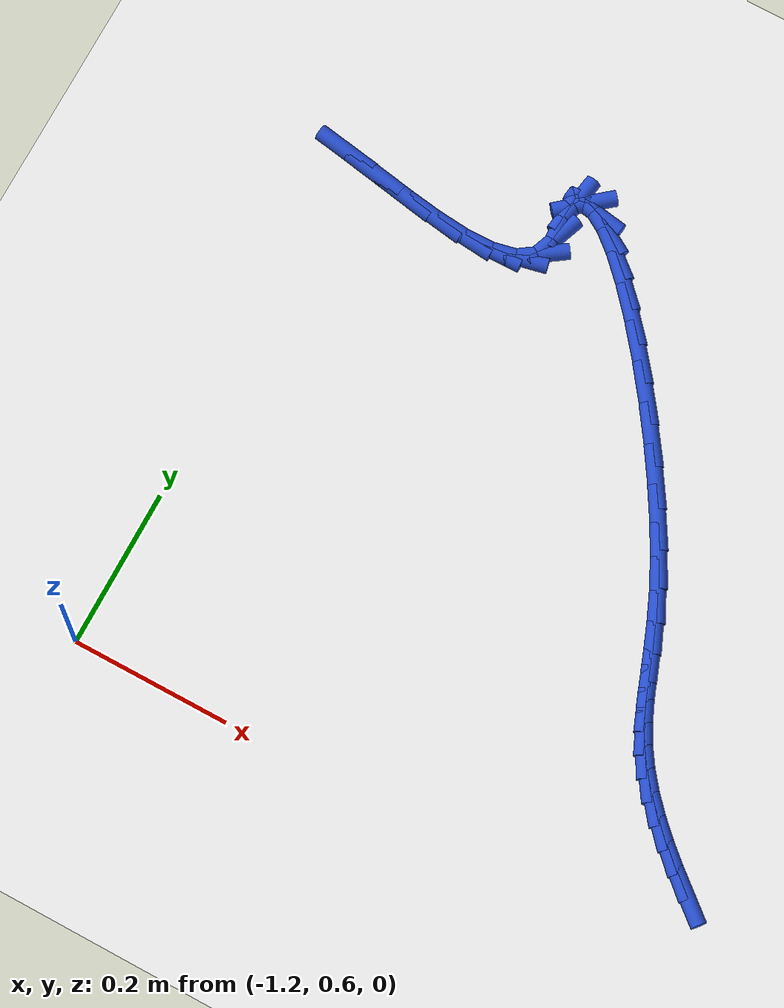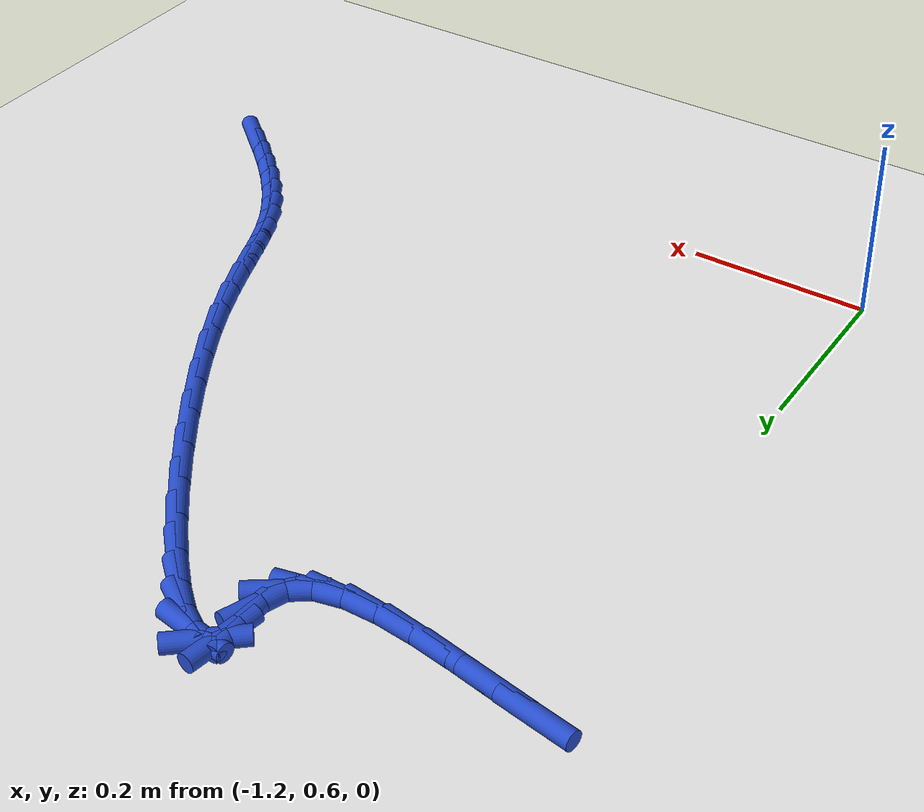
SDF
<sdf version="1.6">
 <world name="default">
  <model name="ground_plane">
   <static>1</static>
   <link name="link">
    <collision name="collision">
     <geometry><plane><normal>0 0 1</normal><size>100 100</size></plane></geometry>
     <surface><friction><ode><mu>100</mu><mu2>50</mu2></ode></friction></surface>
    </collision>
    <visual name="visual">
     <cast_shadows>0</cast_shadows>
     <geometry><plane><normal>0 0 1</normal><size>100 100</size></plane></geometry>
     <material>
      <script><uri>file://media/materials/scripts/gazebo.material</uri><name>Gazebo/WhiteGlow</name></script>
     </material>
    </visual>
   </link>
  </model>
  <model name="line">
   <link name="link_26">
    <pose>-0.4387997089156994 0.6781560836376413 0.01 0 1.57 -0.6959763503585942</pose>
    <collision name="collision">
     <geometry><cylinder><radius>0.01</radius><length>0.08</length></cylinder></geometry>
    </collision>
    <visual name="visual">
     <material>
      <script><name>Gazebo/Blue</name><uri>file://media/materials/scripts/gazebo.material</uri></script>
     </material>
     <geometry><cylinder><radius>0.01</radius><length>0.08</length></cylinder></geometry>
    </visual>
   </link>
   <link name="link_27">
    <pose>-0.4633100074963067 0.6986328044642993 0.01 0 1.57 -0.7311541261599552</pose>
    <collision name="collision">
     <geometry><cylinder><radius>0.01</radius><length>0.08</length></cylinder></geometry>
    </collision>
    <visual name="visual">
     <material>
      <script><name>Gazebo/Blue</name><uri>file://media/materials/scripts/gazebo.material</uri></script>
     </material>
     <geometry><cylinder><radius>0.01</radius><length>0.08</length></cylinder></geometry>
    </visual>
   </link>
   <link name="link_28">
    <pose>-0.48647117672768303 0.7194083296940923 0.01 0 1.57 -0.7767029563622707</pose>
    <collision name="collision">
     <geometry><cylinder><radius>0.01</radius><length>0.08</length></cylinder></geometry>
    </collision>
    <visual name="visual">
     <material>
      <script><name>Gazebo/Blue</name><uri>file://media/materials/scripts/gazebo.material</uri></script>
     </material>
     <geometry><cylinder><radius>0.01</radius><length>0.08</length></cylinder></geometry>
    </visual>
   </link>
   <link name="link_29">
    <pose>-0.5080254479037991 0.7405909850801176 0.01 0 1.57 -0.8338891792913433</pose>
    <collision name="collision">
     <geometry><cylinder><radius>0.01</radius><length>0.08</length></cylinder></geometry>
    </collision>
    <visual name="visual">
     <material>
      <script><name>Gazebo/Blue</name><uri>file://media/materials/scripts/gazebo.material</uri></script>
     </material>
     <geometry><cylinder><radius>0.01</radius><length>0.08</length></cylinder></geometry>
    </visual>
   </link>
   <link name="link_30">
    <pose>-0.5277150523186256 0.762289096375472 0.01 0 1.57 -0.9040370818781435</pose>
    <collision name="collision">
     <geometry><cylinder><radius>0.01</radius><length>0.08</length></cylinder></geometry>
    </collision>
    <visual name="visual">
     <material>
      <script><name>Gazebo/Blue</name><uri>file://media/materials/scripts/gazebo.material</uri></script>
     </material>
     <geometry><cylinder><radius>0.01</radius><length>0.08</length></cylinder></geometry>
    </visual>
   </link>
   <link name="link_31">
    <pose>-0.5452822212661331 0.784610989333253 0.01 0 1.57 -0.9882902400405796</pose>
    <collision name="collision">
     <geometry><cylinder><radius>0.01</radius><length>0.08</length></cylinder></geometry>
    </collision>
    <visual name="visual">
     <material>
      <script><name>Gazebo/Blue</name><uri>file://media/materials/scripts/gazebo.material</uri></script>
     </material>
     <geometry><cylinder><radius>0.01</radius><length>0.08</length></cylinder></geometry>
    </visual>
   </link>
   <link name="link_32">
    <pose>-0.5604691860402927 0.8076649897065584 0.01 0 1.57 -1.0823117957941057</pose>
    <collision name="collision">
     <geometry><cylinder><radius>0.01</radius><length>0.08</length></cylinder></geometry>
    </collision>
    <visual name="visual">
     <material>
      <script><name>Gazebo/Blue</name><uri>file://media/materials/scripts/gazebo.material</uri></script>
     </material>
     <geometry><cylinder><radius>0.01</radius><length>0.08</length></cylinder></geometry>
    </visual>
   </link>
   <link name="link_33">
    <pose>-0.5731873946283736 0.8315964486987707 0.01 0 1.57 -1.1576529503989859</pose>
    <collision name="collision">
     <geometry><cylinder><radius>0.01</radius><length>0.08</length></cylinder></geometry>
    </collision>
    <visual name="visual">
     <material>
      <script><name>Gazebo/Blue</name><uri>file://media/materials/scripts/gazebo.material</uri></script>
     </material>
     <geometry><cylinder><radius>0.01</radius><length>0.08</length></cylinder></geometry>
    </visual>
   </link>
   <link name="link_34">
    <pose>-0.5842092679235866 0.8567391026477709 0.01 0 1.57 -1.200900658465214</pose>
    <collision name="collision">
     <geometry><cylinder><radius>0.01</radius><length>0.08</length></cylinder></geometry>
    </collision>
    <visual name="visual">
     <material>
      <script><name>Gazebo/Blue</name><uri>file://media/materials/scripts/gazebo.material</uri></script>
     </material>
     <geometry><cylinder><radius>0.01</radius><length>0.08</length></cylinder></geometry>
    </visual>
   </link>
   <link name="link_35">
    <pose>-0.5945803694636427 0.8834864528543862 0.01 0 1.57 -1.212440061428917</pose>
    <collision name="collision">
     <geometry><cylinder><radius>0.01</radius><length>0.08</length></cylinder></geometry>
    </collision>
    <visual name="visual">
     <material>
      <script><name>Gazebo/Blue</name><uri>file://media/materials/scripts/gazebo.material</uri></script>
     </material>
     <geometry><cylinder><radius>0.01</radius><length>0.08</length></cylinder></geometry>
    </visual>
   </link>
   <link name="link_36">
    <pose>-0.6053463736047532 0.91223202486708 0.01 0 1.57 -1.1971845372921317</pose>
    <collision name="collision">
     <geometry><cylinder><radius>0.01</radius><length>0.08</length></cylinder></geometry>
    </collision>
    <visual name="visual">
     <material>
      <script><name>Gazebo/Blue</name><uri>file://media/materials/scripts/gazebo.material</uri></script>
     </material>
     <geometry><cylinder><radius>0.01</radius><length>0.08</length></cylinder></geometry>
    </visual>
   </link>
   <link name="link_37">
    <pose>-0.6175529547031305 0.9433693442343164 0.01 0 1.57 -1.1620611873588562</pose>
    <collision name="collision">
     <geometry><cylinder><radius>0.01</radius><length>0.08</length></cylinder></geometry>
    </collision>
    <visual name="visual">
     <material>
      <script><name>Gazebo/Blue</name><uri>file://media/materials/scripts/gazebo.material</uri></script>
     </material>
     <geometry><cylinder><radius>0.01</radius><length>0.08</length></cylinder></geometry>
    </visual>
   </link>
   <link name="link_38">
    <pose>-0.6322457871149865 0.9772919365045591 0.01 0 1.57 -1.1142273092928259</pose>
    <collision name="collision">
     <geometry><cylinder><radius>0.01</radius><length>0.08</length></cylinder></geometry>
    </collision>
    <visual name="visual">
     <material>
      <script><name>Gazebo/Blue</name><uri>file://media/materials/scripts/gazebo.material</uri></script>
     </material>
     <geometry><cylinder><radius>0.01</radius><length>0.08</length></cylinder></geometry>
    </visual>
   </link>
   <link name="link_39">
    <pose>-0.6504684769099253 1.0143915439300093 0.01 0 1.57 -1.0650984541148942</pose>
    <collision name="collision">
     <geometry><cylinder><radius>0.01</radius><length>0.08</length></cylinder></geometry>
    </collision>
    <visual name="visual">
     <material>
      <script><name>Gazebo/Blue</name><uri>file://media/materials/scripts/gazebo.material</uri></script>
     </material>
     <geometry><cylinder><radius>0.01</radius><length>0.08</length></cylinder></geometry>
    </visual>
   </link>
   <link name="link_40">
    <pose>-0.6727343675329157 1.0546027113158039 0.01 0 1.57 -1.0256233409169349</pose>
    <collision name="collision">
     <geometry><cylinder><radius>0.01</radius><length>0.08</length></cylinder></geometry>
    </collision>
    <visual name="visual">
     <material>
      <script><name>Gazebo/Blue</name><uri>file://media/materials/scripts/gazebo.material</uri></script>
     </material>
     <geometry><cylinder><radius>0.01</radius><length>0.08</length></cylinder></geometry>
    </visual>
   </link>
   <link name="link_41">
    <pose>-0.698325107132864 1.0967980041406897 0.01 0 1.57 -0.9921833954823563</pose>
    <collision name="collision">
     <geometry><cylinder><radius>0.01</radius><length>0.08</length></cylinder></geometry>
    </collision>
    <visual name="visual">
     <material>
      <script><name>Gazebo/Blue</name><uri>file://media/materials/scripts/gazebo.material</uri></script>
     </material>
     <geometry><cylinder><radius>0.01</radius><length>0.08</length></cylinder></geometry>
    </visual>
   </link>
   <link name="link_42">
    <pose>-0.7263478838506358 1.1396995668154652 0.01 0 1.57 -0.9611649062504479</pose>
    <collision name="collision">
     <geometry><cylinder><radius>0.01</radius><length>0.08</length></cylinder></geometry>
    </collision>
    <visual name="visual">
     <material>
      <script><name>Gazebo/Blue</name><uri>file://media/materials/scripts/gazebo.material</uri></script>
     </material>
     <geometry><cylinder><radius>0.01</radius><length>0.08</length></cylinder></geometry>
    </visual>
   </link>
   <link name="link_43">
    <pose>-0.755909885827098 1.182029543750929 0.01 0 1.57 -0.9297024657896009</pose>
    <collision name="collision">
     <geometry><cylinder><radius>0.01</radius><length>0.08</length></cylinder></geometry>
    </collision>
    <visual name="visual">
     <material>
      <script><name>Gazebo/Blue</name><uri>file://media/materials/scripts/gazebo.material</uri></script>
     </material>
     <geometry><cylinder><radius>0.01</radius><length>0.08</length></cylinder></geometry>
    </visual>
   </link>
   <link name="link_44">
    <pose>-0.7861183012031175 1.2225100793578816 0.01 0 1.57 -0.8947601753995672</pose>
    <collision name="collision">
     <geometry><cylinder><radius>0.01</radius><length>0.08</length></cylinder></geometry>
    </collision>
    <visual name="visual">
     <material>
      <script><name>Gazebo/Blue</name><uri>file://media/materials/scripts/gazebo.material</uri></script>
     </material>
     <geometry><cylinder><radius>0.01</radius><length>0.08</length></cylinder></geometry>
    </visual>
   </link>
   <link name="link_45">
    <pose>-0.8160803181195608 1.2598633180471206 0.01 0 1.57 -0.8520826936787014</pose>
    <collision name="collision">
     <geometry><cylinder><radius>0.01</radius><length>0.08</length></cylinder></geometry>
    </collision>
    <visual name="visual">
     <material>
      <script><name>Gazebo/Blue</name><uri>file://media/materials/scripts/gazebo.material</uri></script>
     </material>
     <geometry><cylinder><radius>0.01</radius><length>0.08</length></cylinder></geometry>
    </visual>
   </link>
   <link name="link_46">
    <pose>-0.8449031247172947 1.2928114042294456 0.01 0 1.57 -0.7941720775234102</pose>
    <collision name="collision">
     <geometry><cylinder><radius>0.01</radius><length>0.08</length></cylinder></geometry>
    </collision>
    <visual name="visual">
     <material>
      <script><name>Gazebo/Blue</name><uri>file://media/materials/scripts/gazebo.material</uri></script>
     </material>
     <geometry><cylinder><radius>0.01</radius><length>0.08</length></cylinder></geometry>
    </visual>
   </link>
   <link name="link_47">
    <pose>-0.8716939091371854 1.3200764823156557 0.01 0 1.57 -0.7049355665056798</pose>
    <collision name="collision">
     <geometry><cylinder><radius>0.01</radius><length>0.08</length></cylinder></geometry>
    </collision>
    <visual name="visual">
     <material>
      <script><name>Gazebo/Blue</name><uri>file://media/materials/scripts/gazebo.material</uri></script>
     </material>
     <geometry><cylinder><radius>0.01</radius><length>0.08</length></cylinder></geometry>
    </visual>
   </link>
   <link name="link_48">
    <pose>-0.8955598595201004 1.3403806967165504 0.01 0 1.57 -0.5417575589643765</pose>
    <collision name="collision">
     <geometry><cylinder><radius>0.01</radius><length>0.08</length></cylinder></geometry>
    </collision>
    <visual name="visual">
     <material>
      <script><name>Gazebo/Blue</name><uri>file://media/materials/scripts/gazebo.material</uri></script>
     </material>
     <geometry><cylinder><radius>0.01</radius><length>0.08</length></cylinder></geometry>
    </visual>
   </link>
   <link name="link_49">
    <pose>-0.9156081640069054 1.3524461918429276 0.01 0 1.57 -0.1646800051082283</pose>
    <collision name="collision">
     <geometry><cylinder><radius>0.01</radius><length>0.08</length></cylinder></geometry>
    </collision>
    <visual name="visual">
     <material>
      <script><name>Gazebo/Blue</name><uri>file://media/materials/scripts/gazebo.material</uri></script>
     </material>
     <geometry><cylinder><radius>0.01</radius><length>0.08</length></cylinder></geometry>
    </visual>
   </link>
   <link name="link_50">
    <pose>-0.930946010738468 1.3549951121055879 0.01 0 1.57 0.702769171397926</pose>
    <collision name="collision">
     <geometry><cylinder><radius>0.01</radius><length>0.08</length></cylinder></geometry>
    </collision>
    <visual name="visual">
     <material>
      <script><name>Gazebo/Blue</name><uri>file://media/materials/scripts/gazebo.material</uri></script>
     </material>
     <geometry><cylinder><radius>0.01</radius><length>0.08</length></cylinder></geometry>
    </visual>
   </link>
   <link name="link_51">
    <pose>-0.9406805878556543 1.3467496019153293 0.01 0 1.57 1.41273387409286</pose>
    <collision name="collision">
     <geometry><cylinder><radius>0.01</radius><length>0.08</length></cylinder></geometry>
    </collision>
    <visual name="visual">
     <material>
      <script><name>Gazebo/Blue</name><uri>file://media/materials/scripts/gazebo.material</uri></script>
     </material>
     <geometry><cylinder><radius>0.01</radius><length>0.08</length></cylinder></geometry>
    </visual>
   </link>
   <link name="link_52">
    <pose>-0.9439190834993308 1.3264318056829507 0.01 0 1.57 -1.5221675186880352</pose>
    <collision name="collision">
     <geometry><cylinder><radius>0.01</radius><length>0.08</length></cylinder></geometry>
    </collision>
    <visual name="visual">
     <material>
      <script><name>Gazebo/Blue</name><uri>file://media/materials/scripts/gazebo.material</uri></script>
     </material>
     <geometry><cylinder><radius>0.01</radius><length>0.08</length></cylinder></geometry>
    </visual>
   </link>
   <link name="link_53">
    <pose>-0.9424291690063107 1.2958174448702005 0.01 0 1.57 1.2154205038277377</pose>
    <collision name="collision">
     <geometry><cylinder><radius>0.01</radius><length>0.08</length></cylinder></geometry>
    </collision>
    <visual name="visual">
     <material>
      <script><name>Gazebo/Blue</name><uri>file://media/materials/scripts/gazebo.material</uri></script>
     </material>
     <geometry><cylinder><radius>0.01</radius><length>0.08</length></cylinder></geometry>
    </visual>
   </link>
   <link name="link_54">
    <pose>-0.951201153349756 1.2721817337904735 0.01 0 1.57 0.6095122051540365</pose>
    <collision name="collision">
     <geometry><cylinder><radius>0.01</radius><length>0.08</length></cylinder></geometry>
    </collision>
    <visual name="visual">
     <material>
      <script><name>Gazebo/Blue</name><uri>file://media/materials/scripts/gazebo.material</uri></script>
     </material>
     <geometry><cylinder><radius>0.01</radius><length>0.08</length></cylinder></geometry>
    </visual>
   </link>
   <link name="link_55">
    <pose>-0.9716135039518669 1.2579299728107183 0.01 0 1.57 0.21533407115697037</pose>
    <collision name="collision">
     <geometry><cylinder><radius>0.01</radius><length>0.08</length></cylinder></geometry>
    </collision>
    <visual name="visual">
     <material>
      <script><name>Gazebo/Blue</name><uri>file://media/materials/scripts/gazebo.material</uri></script>
     </material>
     <geometry><cylinder><radius>0.01</radius><length>0.08</length></cylinder></geometry>
    </visual>
   </link>
   <link name="link_56">
    <pose>-1.0014193933348703 1.2514106724744487 0.01 0 1.57 0.011861373339010307</pose>
    <collision name="collision">
     <geometry><cylinder><radius>0.01</radius><length>0.08</length></cylinder></geometry>
    </collision>
    <visual name="visual">
     <material>
      <script><name>Gazebo/Blue</name><uri>file://media/materials/scripts/gazebo.material</uri></script>
     </material>
     <geometry><cylinder><radius>0.01</radius><length>0.08</length></cylinder></geometry>
    </visual>
   </link>
   <link name="link_57">
    <pose>-1.0383719940209934 1.2509723433251763 0.01 0 1.57 -0.09507487366044656</pose>
    <collision name="collision">
     <geometry><cylinder><radius>0.01</radius><length>0.08</length></cylinder></geometry>
    </collision>
    <visual name="visual">
     <material>
      <script><name>Gazebo/Blue</name><uri>file://media/materials/scripts/gazebo.material</uri></script>
     </material>
     <geometry><cylinder><radius>0.01</radius><length>0.08</length></cylinder></geometry>
    </visual>
   </link>
   <link name="link_58">
    <pose>-1.0802244785324633 1.2549634959064135 0.01 0 1.57 -0.150939853694309</pose>
    <collision name="collision">
     <geometry><cylinder><radius>0.01</radius><length>0.08</length></cylinder></geometry>
    </collision>
    <visual name="visual">
     <material>
      <script><name>Gazebo/Blue</name><uri>file://media/materials/scripts/gazebo.material</uri></script>
     </material>
     <geometry><cylinder><radius>0.01</radius><length>0.08</length></cylinder></geometry>
    </visual>
   </link>
   <link name="link_59">
    <pose>-1.124730019391508 1.2617326407616742 0.01 0 1.57 -0.17402521340055316</pose>
    <collision name="collision">
     <geometry><cylinder><radius>0.01</radius><length>0.08</length></cylinder></geometry>
    </collision>
    <visual name="visual">
     <material>
      <script><name>Gazebo/Blue</name><uri>file://media/materials/scripts/gazebo.material</uri></script>
     </material>
     <geometry><cylinder><radius>0.01</radius><length>0.08</length></cylinder></geometry>
    </visual>
   </link>
   <link name="link_60">
    <pose>-1.1696417891203537 1.2696282884344705 0.01 0 1.57 -0.1729412385431459</pose>
    <collision name="collision">
     <geometry><cylinder><radius>0.01</radius><length>0.08</length></cylinder></geometry>
    </collision>
    <visual name="visual">
     <material>
      <script><name>Gazebo/Blue</name><uri>file://media/materials/scripts/gazebo.material</uri></script>
     </material>
     <geometry><cylinder><radius>0.01</radius><length>0.08</length></cylinder></geometry>
    </visual>
   </link>
   <link name="link_61">
    <pose>-1.2130525648270667 1.2772115547334053 0.01 0 1.57 -0.16198678592180002</pose>
    <collision name="collision">
     <geometry><cylinder><radius>0.01</radius><length>0.08</length></cylinder></geometry>
    </collision>
    <visual name="visual">
     <material>
      <script><name>Gazebo/Blue</name><uri>file://media/materials/scripts/gazebo.material</uri></script>
     </material>
     <geometry><cylinder><radius>0.01</radius><length>0.08</length></cylinder></geometry>
    </visual>
   </link>
  </model>
 </world>
</sdf>
